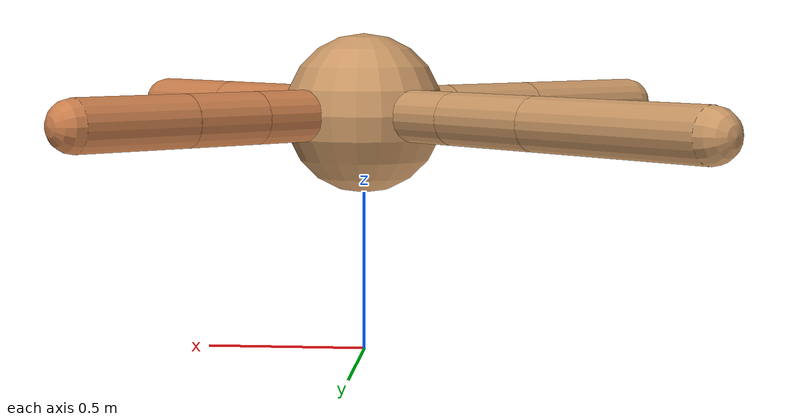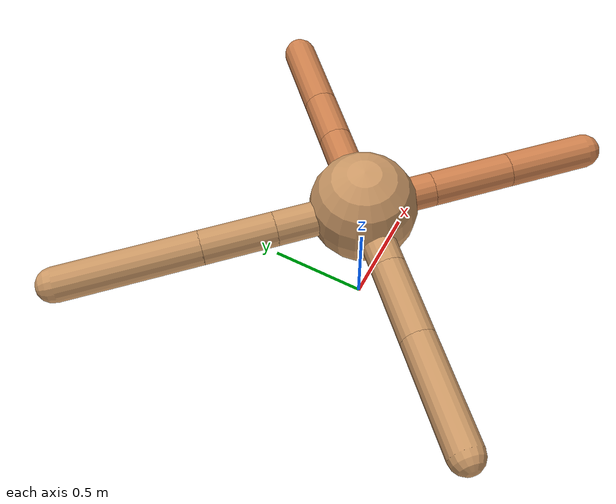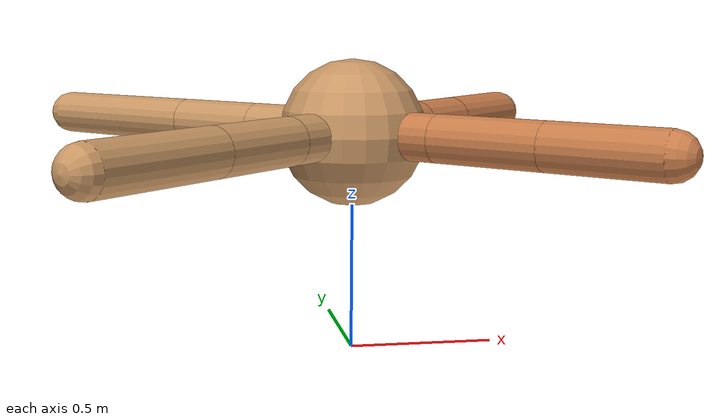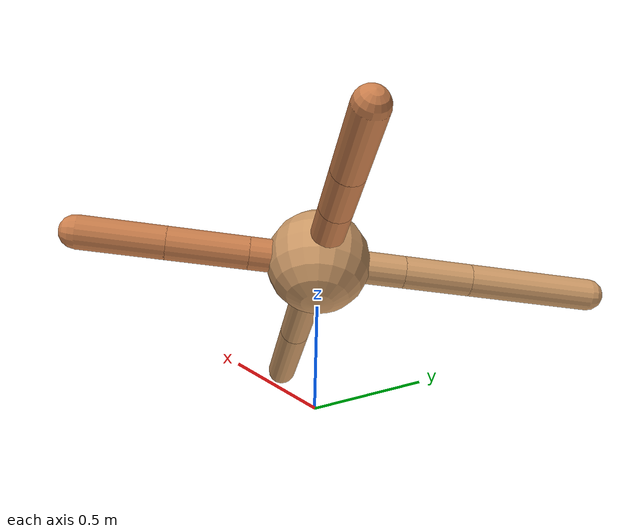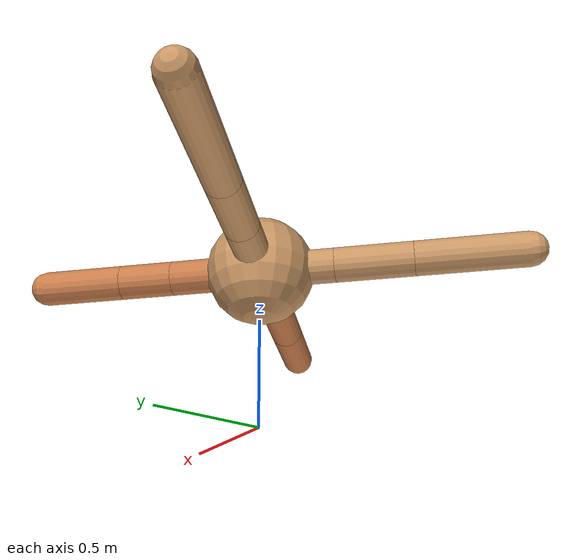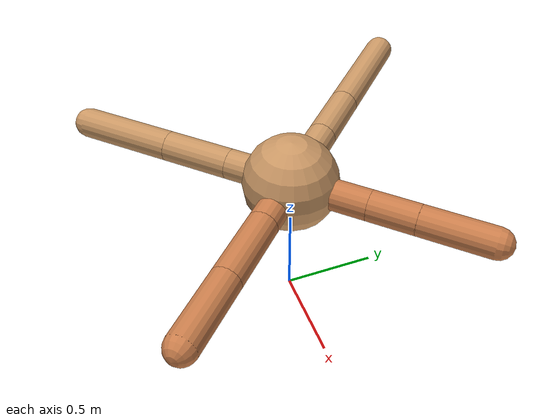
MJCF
<mujoco model="ant">
  <compiler angle="degree" coordinate="local" inertiafromgeom="true" />
  <option integrator="RK4" timestep="0.01" />
  <custom>
    <numeric data="0.0 0.0 0.55 1.0 0.0 0.0 0.0 0.0 1.0 0.0 -1.0 0.0 -1.0 0.0 1.0" name="init_qpos" />
  </custom>
  <default>
    <joint armature="1" damping="1" limited="true" />
    <geom conaffinity="0" condim="3" density="5.0" friction="1.5 0.1 0.1" margin="0.01" rgba="0.8 0.6 0.4 1" />
  </default>
  <worldbody>
    <body name="torso" pos="0 0 0.75">
      <geom name="torso_geom" pos="0 0 0" size="0.25" type="sphere" />

      <body name="front_left_leg" pos="0 0 0">
        <geom fromto="0.0 0.0 0.0 0.294912837492377 0.294912837492377 0.0" name="aux_1_geom" size="0.08" type="capsule" rgba=".8 .5 .3 1" />
        <body name="aux_1" pos="0.294912837492377 0.294912837492377 0.0">
          <joint axis="0 0 1" name="hip_1" pos="0.0 0.0 0.0" range="-40 40" type="hinge" />
          <geom fromto="0.0 0.0 0.0 0.17583709110956924 0.17583709110956924 0.0" name="left_leg_geom" size="0.08" type="capsule" rgba=".8 .5 .3 1" />
          <body pos="0.17583709110956924 0.17583709110956924 0.0" name="front_left_foot">
            <joint axis="-1 1 0" name="ankle_1" pos="0.0 0.0 0.0" range="30 100" type="hinge" />
            <geom fromto="0.0 0.0 0.0 0.2660095737829046 0.2660095737829046 0.0" name="left_ankle_geom" size="0.08" type="capsule" rgba=".8 .5 .3 1" />
          </body>
        </body>
      </body>
      <body name="front_right_leg" pos="0 0 0">
        <geom fromto="0.0 0.0 0.0 -0.29507827240418155 0.29507827240418155 0.0" name="aux_2_geom" size="0.08" type="capsule" />
        <body name="aux_2" pos="-0.29507827240418155 0.29507827240418155 0.0">
          <joint axis="0 0 1" name="hip_2" pos="0.0 0.0 0.0" range="-40 40" type="hinge" />
          <geom fromto="0.0 0.0 0.0 -0.2390613259637815 0.2390613259637815 0.0" name="right_leg_geom" size="0.08" type="capsule" />
          <body pos="-0.2390613259637815 0.2390613259637815 0.0" name="front_right_foot">
            <joint axis="1 1 0" name="ankle_2" pos="0.0 0.0 0.0" range="-100 -30" type="hinge" />
            <geom fromto="0.0 0.0 0.0 -0.4522869286489186 0.4522869286489186 0.0" name="right_ankle_geom" size="0.08" type="capsule" />
          </body>
        </body>
      </body>
      <body name="left_back_leg" pos="0 0 0">
        <geom fromto="0.0 0.0 0.0 -0.24569756788402974 -0.24569756788402974 0.0" name="aux_3_geom" size="0.08" type="capsule" />
        <body name="aux_3" pos="-0.24569756788402974 -0.24569756788402974 0.0">
          <joint axis="0 0 1" name="hip_3" pos="0.0 0.0 0.0" range="-40 40" type="hinge" />
          <geom fromto="0.0 0.0 0.0 -0.2547416393418789 -0.2547416393418789 0.0" name="back_leg_geom" size="0.08" type="capsule" />
          <body pos="-0.2547416393418789 -0.2547416393418789 0.0" name="left_back_foot">
            <joint axis="-1 1 0" name="ankle_3" pos="0.0 0.0 0.0" range="-100 -30" type="hinge" />
            <geom fromto="0.0 0.0 0.0 -0.35894720898467114 -0.35894720898467114 0.0" name="third_ankle_geom" size="0.08" type="capsule" />
          </body>
        </body>
      </body>
      <body name="right_back_leg" pos="0 0 0">
        <geom fromto="0.0 0.0 0.0 0.2358760325858592 -0.2358760325858592 0.0" name="aux_4_geom" size="0.08" type="capsule" rgba=".8 .5 .3 1" />
        <body name="aux_4" pos="0.2358760325858592 -0.2358760325858592 0.0">
          <joint axis="0 0 1" name="hip_4" pos="0.0 0.0 0.0" range="-40 40" type="hinge" />
          <geom fromto="0.0 0.0 0.0 0.2689328233450156 -0.2689328233450156 0.0" name="rightback_leg_geom" size="0.08" type="capsule" rgba=".8 .5 .3 1" />
          <body pos="0.2689328233450156 -0.2689328233450156 0.0" name="right_back_foot">
            <joint axis="1 1 0" name="ankle_4" pos="0.0 0.0 0.0" range="30 100" type="hinge" />
            <geom fromto="0.0 0.0 0.0 0.27997776296363863 -0.27997776296363863 0.0" name="fourth_ankle_geom" size="0.08" type="capsule" rgba=".8 .5 .3 1" />
          </body>
        </body>
      </body>
    </body>
  </worldbody>
  <actuator>
    <motor ctrllimited="true" ctrlrange="-1.0 1.0" joint="hip_4" gear="150" />
    <motor ctrllimited="true" ctrlrange="-1.0 1.0" joint="ankle_4" gear="150" />
    <motor ctrllimited="true" ctrlrange="-1.0 1.0" joint="hip_1" gear="150" />
    <motor ctrllimited="true" ctrlrange="-1.0 1.0" joint="ankle_1" gear="150" />
    <motor ctrllimited="true" ctrlrange="-1.0 1.0" joint="hip_2" gear="150" />
    <motor ctrllimited="true" ctrlrange="-1.0 1.0" joint="ankle_2" gear="150" />
    <motor ctrllimited="true" ctrlrange="-1.0 1.0" joint="hip_3" gear="150" />
    <motor ctrllimited="true" ctrlrange="-1.0 1.0" joint="ankle_3" gear="150" />
  </actuator>
</mujoco>
